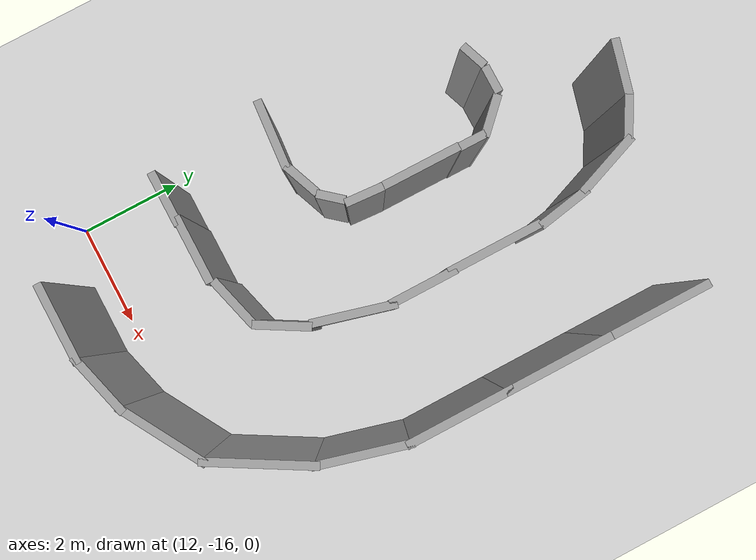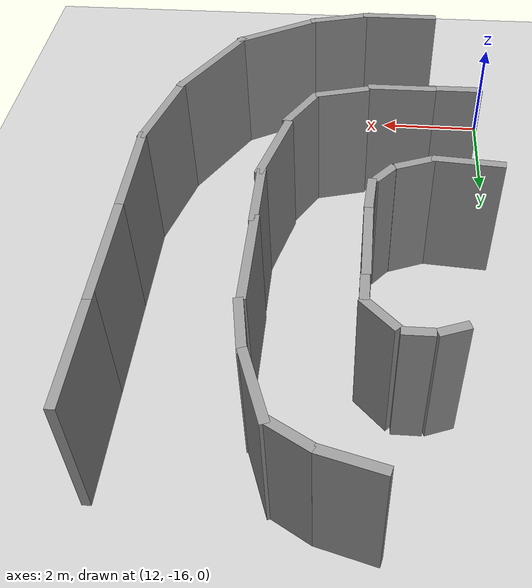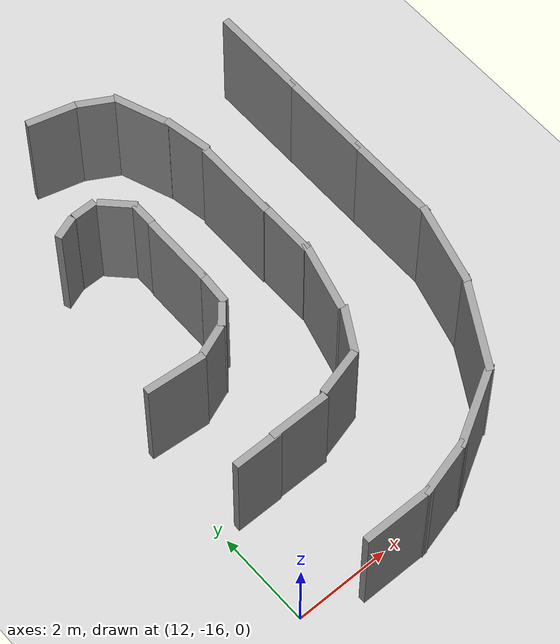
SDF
<sdf version="1.6">
 <world name="default">
  <model name="ground_plane">
   <static>1</static>
   <link name="link">
    <collision name="collision">
     <geometry><plane><normal>0 0 1</normal><size>100 100</size></plane></geometry>
     <surface><friction><ode><mu>100</mu><mu2>50</mu2></ode></friction></surface>
    </collision>
    <visual name="visual">
     <cast_shadows>0</cast_shadows>
     <geometry><plane><normal>0 0 1</normal><size>100 100</size></plane></geometry>
     <material>
      <script><uri>file://media/materials/scripts/gazebo.material</uri><name>Gazebo/Grey</name></script>
     </material>
    </visual>
   </link>
  </model>
  <model name="c-Snail_v3">
   <link name="Wall_29">
    <pose>10.2991 1.24294 0 0 -0 1.5708</pose>
    <visual name="Wall_29_Visual">
     <pose>0 0 1.25 0 -0 0</pose>
     <geometry><box><size>1.5 0.15 2.5</size></box></geometry>
     <material>
      <script><uri>file://media/materials/scripts/gazebo.material</uri><name>Gazebo/Grey</name></script>
      <ambient>1 1 1 1</ambient>
     </material>
     <meta><layer>0</layer></meta>
    </visual>
    <collision name="Wall_29_Collision">
     <pose>0 0 1.25 0 -0 0</pose>
     <geometry><box><size>1.5 0.15 2.5</size></box></geometry>
     <surface>
      <friction>
       <ode><mu>1</mu><mu2>1</mu2><fdir1>0 0 0</fdir1><slip1>0</slip1><slip2>0</slip2></ode>
       <torsional>
        <coefficient>1</coefficient>
        <patch_radius>0</patch_radius>
        <surface_radius>0</surface_radius>
        <use_patch_radius>1</use_patch_radius>
        <ode><slip>0</slip></ode>
       </torsional>
      </friction>
      <bounce><restitution_coefficient>0</restitution_coefficient><threshold>1e+06</threshold></bounce>
      <contact>
       <collide_without_contact>0</collide_without_contact>
       <collide_without_contact_bitmask>1</collide_without_contact_bitmask>
       <collide_bitmask>1</collide_bitmask>
       <ode>
        <soft_cfm>0</soft_cfm>
        <soft_erp>0.2</soft_erp>
        <kp>1e+13</kp>
        <kd>1</kd>
        <max_vel>0.01</max_vel>
        <min_depth>0</min_depth>
       </ode>
       <bullet>
        <split_impulse>1</split_impulse>
        <split_impulse_penetration_threshold>-0.01</split_impulse_penetration_threshold>
        <soft_cfm>0</soft_cfm>
        <soft_erp>0.2</soft_erp>
        <kp>1e+13</kp>
        <kd>1</kd>
       </bullet>
      </contact>
     </surface>
    </collision>
   </link>
   <link name="Wall_30">
    <pose>10.1568 2.4492 0 0 -0 1.8326</pose>
    <visual name="Wall_30_Visual">
     <pose>0 0 1.25 0 -0 0</pose>
     <geometry><box><size>1.25 0.15 2.5</size></box></geometry>
     <material>
      <script><uri>file://media/materials/scripts/gazebo.material</uri><name>Gazebo/Grey</name></script>
      <ambient>1 1 1 1</ambient>
     </material>
     <meta><layer>0</layer></meta>
    </visual>
    <collision name="Wall_30_Collision">
     <pose>0 0 1.25 0 -0 0</pose>
     <geometry><box><size>1.25 0.15 2.5</size></box></geometry>
     <surface>
      <friction>
       <ode><mu>1</mu><mu2>1</mu2><fdir1>0 0 0</fdir1><slip1>0</slip1><slip2>0</slip2></ode>
       <torsional>
        <coefficient>1</coefficient>
        <patch_radius>0</patch_radius>
        <surface_radius>0</surface_radius>
        <use_patch_radius>1</use_patch_radius>
        <ode><slip>0</slip></ode>
       </torsional>
      </friction>
      <bounce><restitution_coefficient>0</restitution_coefficient><threshold>1e+06</threshold></bounce>
      <contact>
       <collide_without_contact>0</collide_without_contact>
       <collide_without_contact_bitmask>1</collide_without_contact_bitmask>
       <collide_bitmask>1</collide_bitmask>
       <ode>
        <soft_cfm>0</soft_cfm>
        <soft_erp>0.2</soft_erp>
        <kp>1e+13</kp>
        <kd>1</kd>
        <max_vel>0.01</max_vel>
        <min_depth>0</min_depth>
       </ode>
       <bullet>
        <split_impulse>1</split_impulse>
        <split_impulse_penetration_threshold>-0.01</split_impulse_penetration_threshold>
        <soft_cfm>0</soft_cfm>
        <soft_erp>0.2</soft_erp>
        <kp>1e+13</kp>
        <kd>1</kd>
       </bullet>
      </contact>
     </surface>
    </collision>
   </link>
   <link name="Wall_31">
    <pose>9.61441 3.67328 0 0 -0 2.0944</pose>
    <visual name="Wall_31_Visual">
     <pose>0 0 1.25 0 -0 0</pose>
     <geometry><box><size>1.75 0.15 2.5</size></box></geometry>
     <material>
      <script><uri>file://media/materials/scripts/gazebo.material</uri><name>Gazebo/Grey</name></script>
      <ambient>1 1 1 1</ambient>
     </material>
     <meta><layer>0</layer></meta>
    </visual>
    <collision name="Wall_31_Collision">
     <pose>0 0 1.25 0 -0 0</pose>
     <geometry><box><size>1.75 0.15 2.5</size></box></geometry>
     <surface>
      <friction>
       <ode><mu>1</mu><mu2>1</mu2><fdir1>0 0 0</fdir1><slip1>0</slip1><slip2>0</slip2></ode>
       <torsional>
        <coefficient>1</coefficient>
        <patch_radius>0</patch_radius>
        <surface_radius>0</surface_radius>
        <use_patch_radius>1</use_patch_radius>
        <ode><slip>0</slip></ode>
       </torsional>
      </friction>
      <bounce><restitution_coefficient>0</restitution_coefficient><threshold>1e+06</threshold></bounce>
      <contact>
       <collide_without_contact>0</collide_without_contact>
       <collide_without_contact_bitmask>1</collide_without_contact_bitmask>
       <collide_bitmask>1</collide_bitmask>
       <ode>
        <soft_cfm>0</soft_cfm>
        <soft_erp>0.2</soft_erp>
        <kp>1e+13</kp>
        <kd>1</kd>
        <max_vel>0.01</max_vel>
        <min_depth>0</min_depth>
       </ode>
       <bullet>
        <split_impulse>1</split_impulse>
        <split_impulse_penetration_threshold>-0.01</split_impulse_penetration_threshold>
        <soft_cfm>0</soft_cfm>
        <soft_erp>0.2</soft_erp>
        <kp>1e+13</kp>
        <kd>1</kd>
       </bullet>
      </contact>
     </surface>
    </collision>
   </link>
   <link name="Wall_32">
    <pose>8.41334 4.8286 0 0 -0 2.61799</pose>
    <visual name="Wall_32_Visual">
     <pose>0 0 1.25 0 -0 0</pose>
     <geometry><box><size>2 0.15 2.5</size></box></geometry>
     <material>
      <script><uri>file://media/materials/scripts/gazebo.material</uri><name>Gazebo/Grey</name></script>
      <ambient>1 1 1 1</ambient>
     </material>
     <meta><layer>0</layer></meta>
    </visual>
    <collision name="Wall_32_Collision">
     <pose>0 0 1.25 0 -0 0</pose>
     <geometry><box><size>2 0.15 2.5</size></box></geometry>
     <surface>
      <friction>
       <ode><mu>1</mu><mu2>1</mu2><fdir1>0 0 0</fdir1><slip1>0</slip1><slip2>0</slip2></ode>
       <torsional>
        <coefficient>1</coefficient>
        <patch_radius>0</patch_radius>
        <surface_radius>0</surface_radius>
        <use_patch_radius>1</use_patch_radius>
        <ode><slip>0</slip></ode>
       </torsional>
      </friction>
      <bounce><restitution_coefficient>0</restitution_coefficient><threshold>1e+06</threshold></bounce>
      <contact>
       <collide_without_contact>0</collide_without_contact>
       <collide_without_contact_bitmask>1</collide_without_contact_bitmask>
       <collide_bitmask>1</collide_bitmask>
       <ode>
        <soft_cfm>0</soft_cfm>
        <soft_erp>0.2</soft_erp>
        <kp>1e+13</kp>
        <kd>1</kd>
        <max_vel>0.01</max_vel>
        <min_depth>0</min_depth>
       </ode>
       <bullet>
        <split_impulse>1</split_impulse>
        <split_impulse_penetration_threshold>-0.01</split_impulse_penetration_threshold>
        <soft_cfm>0</soft_cfm>
        <soft_erp>0.2</soft_erp>
        <kp>1e+13</kp>
        <kd>1</kd>
       </bullet>
      </contact>
     </surface>
    </collision>
   </link>
   <link name="Wall_33">
    <pose>6.83952 5.49815 0 0 -0 2.87979</pose>
    <visual name="Wall_33_Visual">
     <pose>0 0 1.25 0 -0 0</pose>
     <geometry><box><size>1.75 0.15 2.5</size></box></geometry>
     <material>
      <script><uri>file://media/materials/scripts/gazebo.material</uri><name>Gazebo/Grey</name></script>
      <ambient>1 1 1 1</ambient>
     </material>
     <meta><layer>0</layer></meta>
    </visual>
    <collision name="Wall_33_Collision">
     <pose>0 0 1.25 0 -0 0</pose>
     <geometry><box><size>1.75 0.15 2.5</size></box></geometry>
     <surface>
      <friction>
       <ode><mu>1</mu><mu2>1</mu2><fdir1>0 0 0</fdir1><slip1>0</slip1><slip2>0</slip2></ode>
       <torsional>
        <coefficient>1</coefficient>
        <patch_radius>0</patch_radius>
        <surface_radius>0</surface_radius>
        <use_patch_radius>1</use_patch_radius>
        <ode><slip>0</slip></ode>
       </torsional>
      </friction>
      <bounce><restitution_coefficient>0</restitution_coefficient><threshold>1e+06</threshold></bounce>
      <contact>
       <collide_without_contact>0</collide_without_contact>
       <collide_without_contact_bitmask>1</collide_without_contact_bitmask>
       <collide_bitmask>1</collide_bitmask>
       <ode>
        <soft_cfm>0</soft_cfm>
        <soft_erp>0.2</soft_erp>
        <kp>1e+13</kp>
        <kd>1</kd>
        <max_vel>0.01</max_vel>
        <min_depth>0</min_depth>
       </ode>
       <bullet>
        <split_impulse>1</split_impulse>
        <split_impulse_penetration_threshold>-0.01</split_impulse_penetration_threshold>
        <soft_cfm>0</soft_cfm>
        <soft_erp>0.2</soft_erp>
        <kp>1e+13</kp>
        <kd>1</kd>
       </bullet>
      </contact>
     </surface>
    </collision>
   </link>
   <link name="Wall_34">
    <pose>5.14178 5.70521 0 0 -0 3.14159</pose>
    <visual name="Wall_34_Visual">
     <pose>0 0 1.25 0 -0 0</pose>
     <geometry><box><size>2 0.15 2.5</size></box></geometry>
     <material>
      <script><uri>file://media/materials/scripts/gazebo.material</uri><name>Gazebo/Grey</name></script>
      <ambient>1 1 1 1</ambient>
     </material>
     <meta><layer>0</layer></meta>
    </visual>
    <collision name="Wall_34_Collision">
     <pose>0 0 1.25 0 -0 0</pose>
     <geometry><box><size>2 0.15 2.5</size></box></geometry>
     <surface>
      <friction>
       <ode><mu>1</mu><mu2>1</mu2><fdir1>0 0 0</fdir1><slip1>0</slip1><slip2>0</slip2></ode>
       <torsional>
        <coefficient>1</coefficient>
        <patch_radius>0</patch_radius>
        <surface_radius>0</surface_radius>
        <use_patch_radius>1</use_patch_radius>
        <ode><slip>0</slip></ode>
       </torsional>
      </friction>
      <bounce><restitution_coefficient>0</restitution_coefficient><threshold>1e+06</threshold></bounce>
      <contact>
       <collide_without_contact>0</collide_without_contact>
       <collide_without_contact_bitmask>1</collide_without_contact_bitmask>
       <collide_bitmask>1</collide_bitmask>
       <ode>
        <soft_cfm>0</soft_cfm>
        <soft_erp>0.2</soft_erp>
        <kp>1e+13</kp>
        <kd>1</kd>
        <max_vel>0.01</max_vel>
        <min_depth>0</min_depth>
       </ode>
       <bullet>
        <split_impulse>1</split_impulse>
        <split_impulse_penetration_threshold>-0.01</split_impulse_penetration_threshold>
        <soft_cfm>0</soft_cfm>
        <soft_erp>0.2</soft_erp>
        <kp>1e+13</kp>
        <kd>1</kd>
       </bullet>
      </contact>
     </surface>
    </collision>
   </link>
   <link name="Wall_35">
    <pose>3.29178 5.70521 0 0 -0 3.14159</pose>
    <visual name="Wall_35_Visual">
     <pose>0 0 1.25 0 -0 0</pose>
     <geometry><box><size>2 0.15 2.5</size></box></geometry>
     <material>
      <script><uri>file://media/materials/scripts/gazebo.material</uri><name>Gazebo/Grey</name></script>
      <ambient>1 1 1 1</ambient>
     </material>
     <meta><layer>0</layer></meta>
    </visual>
    <collision name="Wall_35_Collision">
     <pose>0 0 1.25 0 -0 0</pose>
     <geometry><box><size>2 0.15 2.5</size></box></geometry>
     <surface>
      <friction>
       <ode><mu>1</mu><mu2>1</mu2><fdir1>0 0 0</fdir1><slip1>0</slip1><slip2>0</slip2></ode>
       <torsional>
        <coefficient>1</coefficient>
        <patch_radius>0</patch_radius>
        <surface_radius>0</surface_radius>
        <use_patch_radius>1</use_patch_radius>
        <ode><slip>0</slip></ode>
       </torsional>
      </friction>
      <bounce><restitution_coefficient>0</restitution_coefficient><threshold>1e+06</threshold></bounce>
      <contact>
       <collide_without_contact>0</collide_without_contact>
       <collide_without_contact_bitmask>1</collide_without_contact_bitmask>
       <collide_bitmask>1</collide_bitmask>
       <ode>
        <soft_cfm>0</soft_cfm>
        <soft_erp>0.2</soft_erp>
        <kp>1e+13</kp>
        <kd>1</kd>
        <max_vel>0.01</max_vel>
        <min_depth>0</min_depth>
       </ode>
       <bullet>
        <split_impulse>1</split_impulse>
        <split_impulse_penetration_threshold>-0.01</split_impulse_penetration_threshold>
        <soft_cfm>0</soft_cfm>
        <soft_erp>0.2</soft_erp>
        <kp>1e+13</kp>
        <kd>1</kd>
       </bullet>
      </contact>
     </surface>
    </collision>
   </link>
   <link name="Wall_36">
    <pose>1.44178 5.70521 0 0 -0 3.14159</pose>
    <visual name="Wall_36_Visual">
     <pose>0 0 1.25 0 -0 0</pose>
     <geometry><box><size>2 0.15 2.5</size></box></geometry>
     <material>
      <script><uri>file://media/materials/scripts/gazebo.material</uri><name>Gazebo/Grey</name></script>
      <ambient>1 1 1 1</ambient>
     </material>
     <meta><layer>0</layer></meta>
    </visual>
    <collision name="Wall_36_Collision">
     <pose>0 0 1.25 0 -0 0</pose>
     <geometry><box><size>2 0.15 2.5</size></box></geometry>
     <surface>
      <friction>
       <ode><mu>1</mu><mu2>1</mu2><fdir1>0 0 0</fdir1><slip1>0</slip1><slip2>0</slip2></ode>
       <torsional>
        <coefficient>1</coefficient>
        <patch_radius>0</patch_radius>
        <surface_radius>0</surface_radius>
        <use_patch_radius>1</use_patch_radius>
        <ode><slip>0</slip></ode>
       </torsional>
      </friction>
      <bounce><restitution_coefficient>0</restitution_coefficient><threshold>1e+06</threshold></bounce>
      <contact>
       <collide_without_contact>0</collide_without_contact>
       <collide_without_contact_bitmask>1</collide_without_contact_bitmask>
       <collide_bitmask>1</collide_bitmask>
       <ode>
        <soft_cfm>0</soft_cfm>
        <soft_erp>0.2</soft_erp>
        <kp>1e+13</kp>
        <kd>1</kd>
        <max_vel>0.01</max_vel>
        <min_depth>0</min_depth>
       </ode>
       <bullet>
        <split_impulse>1</split_impulse>
        <split_impulse_penetration_threshold>-0.01</split_impulse_penetration_threshold>
        <soft_cfm>0</soft_cfm>
        <soft_erp>0.2</soft_erp>
        <kp>1e+13</kp>
        <kd>1</kd>
       </bullet>
      </contact>
     </surface>
    </collision>
   </link>
   <link name="Wall_55">
    <pose>7.78252 0.225208 0 0 -0 1.5708</pose>
    <visual name="Wall_55_Visual">
     <pose>0 0 1.25 0 -0 0</pose>
     <geometry><box><size>1 0.15 2.5</size></box></geometry>
     <material>
      <script><uri>file://media/materials/scripts/gazebo.material</uri><name>Gazebo/Grey</name></script>
      <ambient>1 1 1 1</ambient>
     </material>
     <meta><layer>0</layer></meta>
    </visual>
    <collision name="Wall_55_Collision">
     <pose>0 0 1.25 0 -0 0</pose>
     <geometry><box><size>1 0.15 2.5</size></box></geometry>
     <surface>
      <friction>
       <ode><mu>1</mu><mu2>1</mu2><fdir1>0 0 0</fdir1><slip1>0</slip1><slip2>0</slip2></ode>
       <torsional>
        <coefficient>1</coefficient>
        <patch_radius>0</patch_radius>
        <surface_radius>0</surface_radius>
        <use_patch_radius>1</use_patch_radius>
        <ode><slip>0</slip></ode>
       </torsional>
      </friction>
      <bounce><restitution_coefficient>0</restitution_coefficient><threshold>1e+06</threshold></bounce>
      <contact>
       <collide_without_contact>0</collide_without_contact>
       <collide_without_contact_bitmask>1</collide_without_contact_bitmask>
       <collide_bitmask>1</collide_bitmask>
       <ode>
        <soft_cfm>0</soft_cfm>
        <soft_erp>0.2</soft_erp>
        <kp>1e+13</kp>
        <kd>1</kd>
        <max_vel>0.01</max_vel>
        <min_depth>0</min_depth>
       </ode>
       <bullet>
        <split_impulse>1</split_impulse>
        <split_impulse_penetration_threshold>-0.01</split_impulse_penetration_threshold>
        <soft_cfm>0</soft_cfm>
        <soft_erp>0.2</soft_erp>
        <kp>1e+13</kp>
        <kd>1</kd>
       </bullet>
      </contact>
     </surface>
    </collision>
   </link>
   <link name="Wall_56">
    <pose>7.75985 1.20021 0 0 -0 1.5708</pose>
    <visual name="Wall_56_Visual">
     <pose>0 0 1.25 0 -0 0</pose>
     <geometry><box><size>1.25 0.15 2.5</size></box></geometry>
     <material>
      <script><uri>file://media/materials/scripts/gazebo.material</uri><name>Gazebo/Grey</name></script>
      <ambient>1 1 1 1</ambient>
     </material>
     <meta><layer>0</layer></meta>
    </visual>
    <collision name="Wall_56_Collision">
     <pose>0 0 1.25 0 -0 0</pose>
     <geometry><box><size>1.25 0.15 2.5</size></box></geometry>
     <surface>
      <friction>
       <ode><mu>1</mu><mu2>1</mu2><fdir1>0 0 0</fdir1><slip1>0</slip1><slip2>0</slip2></ode>
       <torsional>
        <coefficient>1</coefficient>
        <patch_radius>0</patch_radius>
        <surface_radius>0</surface_radius>
        <use_patch_radius>1</use_patch_radius>
        <ode><slip>0</slip></ode>
       </torsional>
      </friction>
      <bounce><restitution_coefficient>0</restitution_coefficient><threshold>1e+06</threshold></bounce>
      <contact>
       <collide_without_contact>0</collide_without_contact>
       <collide_without_contact_bitmask>1</collide_without_contact_bitmask>
       <collide_bitmask>1</collide_bitmask>
       <ode>
        <soft_cfm>0</soft_cfm>
        <soft_erp>0.2</soft_erp>
        <kp>1e+13</kp>
        <kd>1</kd>
        <max_vel>0.01</max_vel>
        <min_depth>0</min_depth>
       </ode>
       <bullet>
        <split_impulse>1</split_impulse>
        <split_impulse_penetration_threshold>-0.01</split_impulse_penetration_threshold>
        <soft_cfm>0</soft_cfm>
        <soft_erp>0.2</soft_erp>
        <kp>1e+13</kp>
        <kd>1</kd>
       </bullet>
      </contact>
     </surface>
    </collision>
   </link>
   <link name="Wall_57">
    <pose>7.56918 2.29911 0 0 -0 1.8326</pose>
    <visual name="Wall_57_Visual">
     <pose>0 0 1.25 0 -0 0</pose>
     <geometry><box><size>1 0.15 2.5</size></box></geometry>
     <material>
      <script><uri>file://media/materials/scripts/gazebo.material</uri><name>Gazebo/Grey</name></script>
      <ambient>1 1 1 1</ambient>
     </material>
     <meta><layer>0</layer></meta>
    </visual>
    <collision name="Wall_57_Collision">
     <pose>0 0 1.25 0 -0 0</pose>
     <geometry><box><size>1 0.15 2.5</size></box></geometry>
     <surface>
      <friction>
       <ode><mu>1</mu><mu2>1</mu2><fdir1>0 0 0</fdir1><slip1>0</slip1><slip2>0</slip2></ode>
       <torsional>
        <coefficient>1</coefficient>
        <patch_radius>0</patch_radius>
        <surface_radius>0</surface_radius>
        <use_patch_radius>1</use_patch_radius>
        <ode><slip>0</slip></ode>
       </torsional>
      </friction>
      <bounce><restitution_coefficient>0</restitution_coefficient><threshold>1e+06</threshold></bounce>
      <contact>
       <collide_without_contact>0</collide_without_contact>
       <collide_without_contact_bitmask>1</collide_without_contact_bitmask>
       <collide_bitmask>1</collide_bitmask>
       <ode>
        <soft_cfm>0</soft_cfm>
        <soft_erp>0.2</soft_erp>
        <kp>1e+13</kp>
        <kd>1</kd>
        <max_vel>0.01</max_vel>
        <min_depth>0</min_depth>
       </ode>
       <bullet>
        <split_impulse>1</split_impulse>
        <split_impulse_penetration_threshold>-0.01</split_impulse_penetration_threshold>
        <soft_cfm>0</soft_cfm>
        <soft_erp>0.2</soft_erp>
        <kp>1e+13</kp>
        <kd>1</kd>
       </bullet>
      </contact>
     </surface>
    </collision>
   </link>
   <link name="Wall_58">
    <pose>7.036 3.00803 0 0 -0 2.61799</pose>
    <visual name="Wall_58_Visual">
     <pose>0 0 1.25 0 -0 0</pose>
     <geometry><box><size>1 0.15 2.5</size></box></geometry>
     <material>
      <script><uri>file://media/materials/scripts/gazebo.material</uri><name>Gazebo/Grey</name></script>
      <ambient>1 1 1 1</ambient>
     </material>
     <meta><layer>0</layer></meta>
    </visual>
    <collision name="Wall_58_Collision">
     <pose>0 0 1.25 0 -0 0</pose>
     <geometry><box><size>1 0.15 2.5</size></box></geometry>
     <surface>
      <friction>
       <ode><mu>1</mu><mu2>1</mu2><fdir1>0 0 0</fdir1><slip1>0</slip1><slip2>0</slip2></ode>
       <torsional>
        <coefficient>1</coefficient>
        <patch_radius>0</patch_radius>
        <surface_radius>0</surface_radius>
        <use_patch_radius>1</use_patch_radius>
        <ode><slip>0</slip></ode>
       </torsional>
      </friction>
      <bounce><restitution_coefficient>0</restitution_coefficient><threshold>1e+06</threshold></bounce>
      <contact>
       <collide_without_contact>0</collide_without_contact>
       <collide_without_contact_bitmask>1</collide_without_contact_bitmask>
       <collide_bitmask>1</collide_bitmask>
       <ode>
        <soft_cfm>0</soft_cfm>
        <soft_erp>0.2</soft_erp>
        <kp>1e+13</kp>
        <kd>1</kd>
        <max_vel>0.01</max_vel>
        <min_depth>0</min_depth>
       </ode>
       <bullet>
        <split_impulse>1</split_impulse>
        <split_impulse_penetration_threshold>-0.01</split_impulse_penetration_threshold>
        <soft_cfm>0</soft_cfm>
        <soft_erp>0.2</soft_erp>
        <kp>1e+13</kp>
        <kd>1</kd>
       </bullet>
      </contact>
     </surface>
    </collision>
   </link>
   <link name="Wall_59">
    <pose>5.90215 3.39004 0 0 -0 2.87979</pose>
    <visual name="Wall_59_Visual">
     <pose>0 0 1.25 0 -0 0</pose>
     <geometry><box><size>1.5 0.15 2.5</size></box></geometry>
     <material>
      <script><uri>file://media/materials/scripts/gazebo.material</uri><name>Gazebo/Grey</name></script>
      <ambient>1 1 1 1</ambient>
     </material>
     <meta><layer>0</layer></meta>
    </visual>
    <collision name="Wall_59_Collision">
     <pose>0 0 1.25 0 -0 0</pose>
     <geometry><box><size>1.5 0.15 2.5</size></box></geometry>
     <surface>
      <friction>
       <ode><mu>1</mu><mu2>1</mu2><fdir1>0 0 0</fdir1><slip1>0</slip1><slip2>0</slip2></ode>
       <torsional>
        <coefficient>1</coefficient>
        <patch_radius>0</patch_radius>
        <surface_radius>0</surface_radius>
        <use_patch_radius>1</use_patch_radius>
        <ode><slip>0</slip></ode>
       </torsional>
      </friction>
      <bounce><restitution_coefficient>0</restitution_coefficient><threshold>1e+06</threshold></bounce>
      <contact>
       <collide_without_contact>0</collide_without_contact>
       <collide_without_contact_bitmask>1</collide_without_contact_bitmask>
       <collide_bitmask>1</collide_bitmask>
       <ode>
        <soft_cfm>0</soft_cfm>
        <soft_erp>0.2</soft_erp>
        <kp>1e+13</kp>
        <kd>1</kd>
        <max_vel>0.01</max_vel>
        <min_depth>0</min_depth>
       </ode>
       <bullet>
        <split_impulse>1</split_impulse>
        <split_impulse_penetration_threshold>-0.01</split_impulse_penetration_threshold>
        <soft_cfm>0</soft_cfm>
        <soft_erp>0.2</soft_erp>
        <kp>1e+13</kp>
        <kd>1</kd>
       </bullet>
      </contact>
     </surface>
    </collision>
   </link>
   <link name="Wall_60">
    <pose>4.67122 3.53706 0 0 -0 3.14159</pose>
    <visual name="Wall_60_Visual">
     <pose>0 0 1.25 0 -0 0</pose>
     <geometry><box><size>1.25 0.15 2.5</size></box></geometry>
     <material>
      <script><uri>file://media/materials/scripts/gazebo.material</uri><name>Gazebo/Grey</name></script>
      <ambient>1 1 1 1</ambient>
     </material>
     <meta><layer>0</layer></meta>
    </visual>
    <collision name="Wall_60_Collision">
     <pose>0 0 1.25 0 -0 0</pose>
     <geometry><box><size>1.25 0.15 2.5</size></box></geometry>
     <surface>
      <friction>
       <ode><mu>1</mu><mu2>1</mu2><fdir1>0 0 0</fdir1><slip1>0</slip1><slip2>0</slip2></ode>
       <torsional>
        <coefficient>1</coefficient>
        <patch_radius>0</patch_radius>
        <surface_radius>0</surface_radius>
        <use_patch_radius>1</use_patch_radius>
        <ode><slip>0</slip></ode>
       </torsional>
      </friction>
      <bounce><restitution_coefficient>0</restitution_coefficient><threshold>1e+06</threshold></bounce>
      <contact>
       <collide_without_contact>0</collide_without_contact>
       <collide_without_contact_bitmask>1</collide_without_contact_bitmask>
       <collide_bitmask>1</collide_bitmask>
       <ode>
        <soft_cfm>0</soft_cfm>
        <soft_erp>0.2</soft_erp>
        <kp>1e+13</kp>
        <kd>1</kd>
        <max_vel>0.01</max_vel>
        <min_depth>0</min_depth>
       </ode>
       <bullet>
        <split_impulse>1</split_impulse>
        <split_impulse_penetration_threshold>-0.01</split_impulse_penetration_threshold>
        <soft_cfm>0</soft_cfm>
        <soft_erp>0.2</soft_erp>
        <kp>1e+13</kp>
        <kd>1</kd>
       </bullet>
      </contact>
     </surface>
    </collision>
   </link>
   <link name="Wall_61">
    <pose>3.31404 3.52063 0 0 -0 3.14159</pose>
    <visual name="Wall_61_Visual">
     <pose>0 0 1.25 0 -0 0</pose>
     <geometry><box><size>1.75 0.15 2.5</size></box></geometry>
     <material>
      <script><uri>file://media/materials/scripts/gazebo.material</uri><name>Gazebo/Grey</name></script>
      <ambient>1 1 1 1</ambient>
     </material>
     <meta><layer>0</layer></meta>
    </visual>
    <collision name="Wall_61_Collision">
     <pose>0 0 1.25 0 -0 0</pose>
     <geometry><box><size>1.75 0.15 2.5</size></box></geometry>
     <surface>
      <friction>
       <ode><mu>1</mu><mu2>1</mu2><fdir1>0 0 0</fdir1><slip1>0</slip1><slip2>0</slip2></ode>
       <torsional>
        <coefficient>1</coefficient>
        <patch_radius>0</patch_radius>
        <surface_radius>0</surface_radius>
        <use_patch_radius>1</use_patch_radius>
        <ode><slip>0</slip></ode>
       </torsional>
      </friction>
      <bounce><restitution_coefficient>0</restitution_coefficient><threshold>1e+06</threshold></bounce>
      <contact>
       <collide_without_contact>0</collide_without_contact>
       <collide_without_contact_bitmask>1</collide_without_contact_bitmask>
       <collide_bitmask>1</collide_bitmask>
       <ode>
        <soft_cfm>0</soft_cfm>
        <soft_erp>0.2</soft_erp>
        <kp>1e+13</kp>
        <kd>1</kd>
        <max_vel>0.01</max_vel>
        <min_depth>0</min_depth>
       </ode>
       <bullet>
        <split_impulse>1</split_impulse>
        <split_impulse_penetration_threshold>-0.01</split_impulse_penetration_threshold>
        <soft_cfm>0</soft_cfm>
        <soft_erp>0.2</soft_erp>
        <kp>1e+13</kp>
        <kd>1</kd>
       </bullet>
      </contact>
     </surface>
    </collision>
   </link>
   <link name="Wall_62">
    <pose>1.97453 3.47402 0 0 0 -2.96184</pose>
    <visual name="Wall_62_Visual">
     <pose>0 0 1.25 0 -0 0</pose>
     <geometry><box><size>1 0.15 2.5</size></box></geometry>
     <material>
      <script><uri>file://media/materials/scripts/gazebo.material</uri><name>Gazebo/Grey</name></script>
      <ambient>1 1 1 1</ambient>
     </material>
     <meta><layer>0</layer></meta>
    </visual>
    <collision name="Wall_62_Collision">
     <pose>0 0 1.25 0 -0 0</pose>
     <geometry><box><size>1 0.15 2.5</size></box></geometry>
     <surface>
      <friction>
       <ode><mu>1</mu><mu2>1</mu2><fdir1>0 0 0</fdir1><slip1>0</slip1><slip2>0</slip2></ode>
       <torsional>
        <coefficient>1</coefficient>
        <patch_radius>0</patch_radius>
        <surface_radius>0</surface_radius>
        <use_patch_radius>1</use_patch_radius>
        <ode><slip>0</slip></ode>
       </torsional>
      </friction>
      <bounce><restitution_coefficient>0</restitution_coefficient><threshold>1e+06</threshold></bounce>
      <contact>
       <collide_without_contact>0</collide_without_contact>
       <collide_without_contact_bitmask>1</collide_without_contact_bitmask>
       <collide_bitmask>1</collide_bitmask>
       <ode>
        <soft_cfm>0</soft_cfm>
        <soft_erp>0.2</soft_erp>
        <kp>1e+13</kp>
        <kd>1</kd>
        <max_vel>0.01</max_vel>
        <min_depth>0</min_depth>
       </ode>
       <bullet>
        <split_impulse>1</split_impulse>
        <split_impulse_penetration_threshold>-0.01</split_impulse_penetration_threshold>
        <soft_cfm>0</soft_cfm>
        <soft_erp>0.2</soft_erp>
        <kp>1e+13</kp>
        <kd>1</kd>
       </bullet>
      </contact>
     </surface>
    </collision>
   </link>
   <link name="Wall_63">
    <pose>0.99614 3.17664 0 0 0 -2.78252</pose>
    <visual name="Wall_63_Visual">
     <pose>0 0 1.25 0 -0 0</pose>
     <geometry><box><size>1.25 0.15 2.5</size></box></geometry>
     <material>
      <script><uri>file://media/materials/scripts/gazebo.material</uri><name>Gazebo/Grey</name></script>
      <ambient>1 1 1 1</ambient>
     </material>
     <meta><layer>0</layer></meta>
    </visual>
    <collision name="Wall_63_Collision">
     <pose>0 0 1.25 0 -0 0</pose>
     <geometry><box><size>1.25 0.15 2.5</size></box></geometry>
     <surface>
      <friction>
       <ode><mu>1</mu><mu2>1</mu2><fdir1>0 0 0</fdir1><slip1>0</slip1><slip2>0</slip2></ode>
       <torsional>
        <coefficient>1</coefficient>
        <patch_radius>0</patch_radius>
        <surface_radius>0</surface_radius>
        <use_patch_radius>1</use_patch_radius>
        <ode><slip>0</slip></ode>
       </torsional>
      </friction>
      <bounce><restitution_coefficient>0</restitution_coefficient><threshold>1e+06</threshold></bounce>
      <contact>
       <collide_without_contact>0</collide_without_contact>
       <collide_without_contact_bitmask>1</collide_without_contact_bitmask>
       <collide_bitmask>1</collide_bitmask>
       <ode>
        <soft_cfm>0</soft_cfm>
        <soft_erp>0.2</soft_erp>
        <kp>1e+13</kp>
        <kd>1</kd>
        <max_vel>0.01</max_vel>
        <min_depth>0</min_depth>
       </ode>
       <bullet>
        <split_impulse>1</split_impulse>
        <split_impulse_penetration_threshold>-0.01</split_impulse_penetration_threshold>
        <soft_cfm>0</soft_cfm>
        <soft_erp>0.2</soft_erp>
        <kp>1e+13</kp>
        <kd>1</kd>
       </bullet>
      </contact>
     </surface>
    </collision>
   </link>
   <link name="Wall_64">
    <pose>0.28704 2.63 0 0 0 -2.0944</pose>
    <visual name="Wall_64_Visual">
     <pose>0 0 1.25 0 -0 0</pose>
     <geometry><box><size>0.75 0.15 2.5</size></box></geometry>
     <material>
      <script><uri>file://media/materials/scripts/gazebo.material</uri><name>Gazebo/Grey</name></script>
      <ambient>1 1 1 1</ambient>
     </material>
     <meta><layer>0</layer></meta>
    </visual>
    <collision name="Wall_64_Collision">
     <pose>0 0 1.25 0 -0 0</pose>
     <geometry><box><size>0.75 0.15 2.5</size></box></geometry>
     <surface>
      <friction>
       <ode><mu>1</mu><mu2>1</mu2><fdir1>0 0 0</fdir1><slip1>0</slip1><slip2>0</slip2></ode>
       <torsional>
        <coefficient>1</coefficient>
        <patch_radius>0</patch_radius>
        <surface_radius>0</surface_radius>
        <use_patch_radius>1</use_patch_radius>
        <ode><slip>0</slip></ode>
       </torsional>
      </friction>
      <bounce><restitution_coefficient>0</restitution_coefficient><threshold>1e+06</threshold></bounce>
      <contact>
       <collide_without_contact>0</collide_without_contact>
       <collide_without_contact_bitmask>1</collide_without_contact_bitmask>
       <collide_bitmask>1</collide_bitmask>
       <ode>
        <soft_cfm>0</soft_cfm>
        <soft_erp>0.2</soft_erp>
        <kp>1e+13</kp>
        <kd>1</kd>
        <max_vel>0.01</max_vel>
        <min_depth>0</min_depth>
       </ode>
       <bullet>
        <split_impulse>1</split_impulse>
        <split_impulse_penetration_threshold>-0.01</split_impulse_penetration_threshold>
        <soft_cfm>0</soft_cfm>
        <soft_erp>0.2</soft_erp>
        <kp>1e+13</kp>
        <kd>1</kd>
       </bullet>
      </contact>
     </surface>
    </collision>
   </link>
   <link name="Wall_65">
    <pose>-0.020213 1.84319 0 0 0 -1.8326</pose>
    <visual name="Wall_65_Visual">
     <pose>0 0 1.25 0 -0 0</pose>
     <geometry><box><size>1 0.15 2.5</size></box></geometry>
     <material>
      <script><uri>file://media/materials/scripts/gazebo.material</uri><name>Gazebo/Grey</name></script>
      <ambient>1 1 1 1</ambient>
     </material>
     <meta><layer>0</layer></meta>
    </visual>
    <collision name="Wall_65_Collision">
     <pose>0 0 1.25 0 -0 0</pose>
     <geometry><box><size>1 0.15 2.5</size></box></geometry>
     <surface>
      <friction>
       <ode><mu>1</mu><mu2>1</mu2><fdir1>0 0 0</fdir1><slip1>0</slip1><slip2>0</slip2></ode>
       <torsional>
        <coefficient>1</coefficient>
        <patch_radius>0</patch_radius>
        <surface_radius>0</surface_radius>
        <use_patch_radius>1</use_patch_radius>
        <ode><slip>0</slip></ode>
       </torsional>
      </friction>
      <bounce><restitution_coefficient>0</restitution_coefficient><threshold>1e+06</threshold></bounce>
      <contact>
       <collide_without_contact>0</collide_without_contact>
       <collide_without_contact_bitmask>1</collide_without_contact_bitmask>
       <collide_bitmask>1</collide_bitmask>
       <ode>
        <soft_cfm>0</soft_cfm>
        <soft_erp>0.2</soft_erp>
        <kp>1e+13</kp>
        <kd>1</kd>
        <max_vel>0.01</max_vel>
        <min_depth>0</min_depth>
       </ode>
       <bullet>
        <split_impulse>1</split_impulse>
        <split_impulse_penetration_threshold>-0.01</split_impulse_penetration_threshold>
        <soft_cfm>0</soft_cfm>
        <soft_erp>0.2</soft_erp>
        <kp>1e+13</kp>
        <kd>1</kd>
       </bullet>
      </contact>
     </surface>
    </collision>
   </link>
   <link name="Wall_71_clone">
    <pose>3.78048 1.74575 0 0 -0 3.13791</pose>
    <visual name="Wall_71_Visual">
     <pose>0 0 1.25 0 -0 0</pose>
     <geometry><box><size>1.5 0.15 2.5</size></box></geometry>
     <material>
      <script><uri>file://media/materials/scripts/gazebo.material</uri><name>Gazebo/Grey</name></script>
      <ambient>1 1 1 1</ambient>
      <shader type="pixel"/>
     </material>
     <meta><layer>0</layer></meta>
    </visual>
    <collision name="Wall_71_Collision">
     <pose>0 0 1.25 0 -0 0</pose>
     <geometry><box><size>1.5 0.15 2.5</size></box></geometry>
     <surface>
      <friction>
       <ode><mu>1</mu><mu2>1</mu2><fdir1>0 0 0</fdir1><slip1>0</slip1><slip2>0</slip2></ode>
       <torsional>
        <coefficient>1</coefficient>
        <patch_radius>0</patch_radius>
        <surface_radius>0</surface_radius>
        <use_patch_radius>1</use_patch_radius>
        <ode><slip>0</slip></ode>
       </torsional>
      </friction>
      <bounce><restitution_coefficient>0</restitution_coefficient><threshold>1e+06</threshold></bounce>
      <contact>
       <collide_without_contact>0</collide_without_contact>
       <collide_without_contact_bitmask>1</collide_without_contact_bitmask>
       <collide_bitmask>1</collide_bitmask>
       <ode>
        <soft_cfm>0</soft_cfm>
        <soft_erp>0.2</soft_erp>
        <kp>1e+13</kp>
        <kd>1</kd>
        <max_vel>0.01</max_vel>
        <min_depth>0</min_depth>
       </ode>
       <bullet>
        <split_impulse>1</split_impulse>
        <split_impulse_penetration_threshold>-0.01</split_impulse_penetration_threshold>
        <soft_cfm>0</soft_cfm>
        <soft_erp>0.2</soft_erp>
        <kp>1e+13</kp>
        <kd>1</kd>
       </bullet>
      </contact>
     </surface>
    </collision>
   </link>
   <link name="Wall_72_clone">
    <pose>5.70761 0.097339 0 0 0 -1.65202</pose>
    <visual name="Wall_72_Visual">
     <pose>0 0 1.25 0 -0 0</pose>
     <geometry><box><size>1.25 0.15 2.5</size></box></geometry>
     <material>
      <script><uri>file://media/materials/scripts/gazebo.material</uri><name>Gazebo/Grey</name></script>
      <ambient>1 1 1 1</ambient>
      <shader type="pixel"/>
     </material>
     <meta><layer>0</layer></meta>
    </visual>
    <collision name="Wall_72_Collision">
     <pose>0 0 1.25 0 -0 0</pose>
     <geometry><box><size>1.25 0.15 2.5</size></box></geometry>
     <surface>
      <friction>
       <ode><mu>1</mu><mu2>1</mu2><fdir1>0 0 0</fdir1><slip1>0</slip1><slip2>0</slip2></ode>
       <torsional>
        <coefficient>1</coefficient>
        <patch_radius>0</patch_radius>
        <surface_radius>0</surface_radius>
        <use_patch_radius>1</use_patch_radius>
        <ode><slip>0</slip></ode>
       </torsional>
      </friction>
      <bounce><restitution_coefficient>0</restitution_coefficient><threshold>1e+06</threshold></bounce>
      <contact>
       <collide_without_contact>0</collide_without_contact>
       <collide_without_contact_bitmask>1</collide_without_contact_bitmask>
       <collide_bitmask>1</collide_bitmask>
       <ode>
        <soft_cfm>0</soft_cfm>
        <soft_erp>0.2</soft_erp>
        <kp>1e+13</kp>
        <kd>1</kd>
        <max_vel>0.01</max_vel>
        <min_depth>0</min_depth>
       </ode>
       <bullet>
        <split_impulse>1</split_impulse>
        <split_impulse_penetration_threshold>-0.01</split_impulse_penetration_threshold>
        <soft_cfm>0</soft_cfm>
        <soft_erp>0.2</soft_erp>
        <kp>1e+13</kp>
        <kd>1</kd>
       </bullet>
      </contact>
     </surface>
    </collision>
   </link>
   <link name="Wall_73_clone_clone">
    <pose>5.62294 1.00373 0 0 -0 1.94012</pose>
    <visual name="Wall_73_Visual">
     <pose>0 0 1.25 0 -0 0</pose>
     <geometry><box><size>0.701928 0.15 2.5</size></box></geometry>
     <material>
      <script><uri>file://media/materials/scripts/gazebo.material</uri><name>Gazebo/Grey</name></script>
      <ambient>1 1 1 1</ambient>
      <shader type="pixel"/>
     </material>
     <meta><layer>0</layer></meta>
    </visual>
    <collision name="Wall_73_Collision">
     <pose>0 0 1.25 0 -0 0</pose>
     <geometry><box><size>0.701928 0.15 2.5</size></box></geometry>
     <surface>
      <friction>
       <ode><mu>1</mu><mu2>1</mu2><fdir1>0 0 0</fdir1><slip1>0</slip1><slip2>0</slip2></ode>
       <torsional>
        <coefficient>1</coefficient>
        <patch_radius>0</patch_radius>
        <surface_radius>0</surface_radius>
        <use_patch_radius>1</use_patch_radius>
        <ode><slip>0</slip></ode>
       </torsional>
      </friction>
      <bounce><restitution_coefficient>0</restitution_coefficient><threshold>1e+06</threshold></bounce>
      <contact>
       <collide_without_contact>0</collide_without_contact>
       <collide_without_contact_bitmask>1</collide_without_contact_bitmask>
       <collide_bitmask>1</collide_bitmask>
       <ode>
        <soft_cfm>0</soft_cfm>
        <soft_erp>0.2</soft_erp>
        <kp>1e+13</kp>
        <kd>1</kd>
        <max_vel>0.01</max_vel>
        <min_depth>0</min_depth>
       </ode>
       <bullet>
        <split_impulse>1</split_impulse>
        <split_impulse_penetration_threshold>-0.01</split_impulse_penetration_threshold>
        <soft_cfm>0</soft_cfm>
        <soft_erp>0.2</soft_erp>
        <kp>1e+13</kp>
        <kd>1</kd>
       </bullet>
      </contact>
     </surface>
    </collision>
   </link>
   <link name="Wall_73_clone_clone_clone">
    <pose>4.81951 1.72477 0 0 0 -0.06667</pose>
    <visual name="Wall_73_Visual">
     <pose>0 0 1.25 0 -0 0</pose>
     <geometry><box><size>0.701928 0.15 2.5</size></box></geometry>
     <material>
      <script><uri>file://media/materials/scripts/gazebo.material</uri><name>Gazebo/Grey</name></script>
      <ambient>1 1 1 1</ambient>
      <shader type="pixel"/>
     </material>
     <meta><layer>0</layer></meta>
    </visual>
    <collision name="Wall_73_Collision">
     <pose>0 0 1.25 0 -0 0</pose>
     <geometry><box><size>0.701928 0.15 2.5</size></box></geometry>
     <surface>
      <friction>
       <ode><mu>1</mu><mu2>1</mu2><fdir1>0 0 0</fdir1><slip1>0</slip1><slip2>0</slip2></ode>
       <torsional>
        <coefficient>1</coefficient>
        <patch_radius>0</patch_radius>
        <surface_radius>0</surface_radius>
        <use_patch_radius>1</use_patch_radius>
        <ode><slip>0</slip></ode>
       </torsional>
      </friction>
      <bounce><restitution_coefficient>0</restitution_coefficient><threshold>1e+06</threshold></bounce>
      <contact>
       <collide_without_contact>0</collide_without_contact>
       <collide_without_contact_bitmask>1</collide_without_contact_bitmask>
       <collide_bitmask>1</collide_bitmask>
       <ode>
        <soft_cfm>0</soft_cfm>
        <soft_erp>0.2</soft_erp>
        <kp>1e+13</kp>
        <kd>1</kd>
        <max_vel>0.01</max_vel>
        <min_depth>0</min_depth>
       </ode>
       <bullet>
        <split_impulse>1</split_impulse>
        <split_impulse_penetration_threshold>-0.01</split_impulse_penetration_threshold>
        <soft_cfm>0</soft_cfm>
        <soft_erp>0.2</soft_erp>
        <kp>1e+13</kp>
        <kd>1</kd>
       </bullet>
      </contact>
     </surface>
    </collision>
   </link>
   <link name="Wall_74">
    <pose>5.32652 1.49493 0 0 -0 2.43922</pose>
    <visual name="Wall_74_Visual">
     <pose>0 0 1.25 0 -0 0</pose>
     <geometry><box><size>0.5 0.15 2.5</size></box></geometry>
     <material>
      <script><uri>file://media/materials/scripts/gazebo.material</uri><name>Gazebo/Grey</name></script>
      <ambient>1 1 1 1</ambient>
     </material>
     <meta><layer>0</layer></meta>
    </visual>
    <collision name="Wall_74_Collision">
     <pose>0 0 1.25 0 -0 0</pose>
     <geometry><box><size>0.5 0.15 2.5</size></box></geometry>
     <surface>
      <friction>
       <ode><mu>1</mu><mu2>1</mu2><fdir1>0 0 0</fdir1><slip1>0</slip1><slip2>0</slip2></ode>
       <torsional>
        <coefficient>1</coefficient>
        <patch_radius>0</patch_radius>
        <surface_radius>0</surface_radius>
        <use_patch_radius>1</use_patch_radius>
        <ode><slip>0</slip></ode>
       </torsional>
      </friction>
      <bounce><restitution_coefficient>0</restitution_coefficient><threshold>1e+06</threshold></bounce>
      <contact>
       <collide_without_contact>0</collide_without_contact>
       <collide_without_contact_bitmask>1</collide_without_contact_bitmask>
       <collide_bitmask>1</collide_bitmask>
       <ode>
        <soft_cfm>0</soft_cfm>
        <soft_erp>0.2</soft_erp>
        <kp>1e+13</kp>
        <kd>1</kd>
        <max_vel>0.01</max_vel>
        <min_depth>0</min_depth>
       </ode>
       <bullet>
        <split_impulse>1</split_impulse>
        <split_impulse_penetration_threshold>-0.01</split_impulse_penetration_threshold>
        <soft_cfm>0</soft_cfm>
        <soft_erp>0.2</soft_erp>
        <kp>1e+13</kp>
        <kd>1</kd>
       </bullet>
      </contact>
     </surface>
    </collision>
   </link>
   <link name="Wall_78">
    <pose>2.01246 1.0051 0 0 -0 1.5708</pose>
    <visual name="Wall_78_Visual">
     <pose>0 0 1.25 0 -0 0</pose>
     <geometry><box><size>0.5 0.15 2.5</size></box></geometry>
     <material>
      <script><uri>file://media/materials/scripts/gazebo.material</uri><name>Gazebo/Grey</name></script>
      <ambient>1 1 1 1</ambient>
     </material>
     <meta><layer>0</layer></meta>
    </visual>
    <collision name="Wall_78_Collision">
     <pose>0 0 1.25 0 -0 0</pose>
     <geometry><box><size>0.5 0.15 2.5</size></box></geometry>
     <surface>
      <friction>
       <ode><mu>1</mu><mu2>1</mu2><fdir1>0 0 0</fdir1><slip1>0</slip1><slip2>0</slip2></ode>
       <torsional>
        <coefficient>1</coefficient>
        <patch_radius>0</patch_radius>
        <surface_radius>0</surface_radius>
        <use_patch_radius>1</use_patch_radius>
        <ode><slip>0</slip></ode>
       </torsional>
      </friction>
      <bounce><restitution_coefficient>0</restitution_coefficient><threshold>1e+06</threshold></bounce>
      <contact>
       <collide_without_contact>0</collide_without_contact>
       <collide_without_contact_bitmask>1</collide_without_contact_bitmask>
       <collide_bitmask>1</collide_bitmask>
       <ode>
        <soft_cfm>0</soft_cfm>
        <soft_erp>0.2</soft_erp>
        <kp>1e+13</kp>
        <kd>1</kd>
        <max_vel>0.01</max_vel>
        <min_depth>0</min_depth>
       </ode>
       <bullet>
        <split_impulse>1</split_impulse>
        <split_impulse_penetration_threshold>-0.01</split_impulse_penetration_threshold>
        <soft_cfm>0</soft_cfm>
        <soft_erp>0.2</soft_erp>
        <kp>1e+13</kp>
        <kd>1</kd>
       </bullet>
      </contact>
     </surface>
    </collision>
   </link>
   <link name="Wall_81">
    <pose>2.09312 0.508262 0 0 -0 1.92174</pose>
    <visual name="Wall_81_Visual">
     <pose>0 0 1.25 0 -0 0</pose>
     <geometry><box><size>0.5 0.15 2.5</size></box></geometry>
     <material>
      <script><uri>file://media/materials/scripts/gazebo.material</uri><name>Gazebo/Grey</name></script>
      <ambient>1 1 1 1</ambient>
     </material>
     <meta><layer>0</layer></meta>
    </visual>
    <collision name="Wall_81_Collision">
     <pose>0 0 1.25 0 -0 0</pose>
     <geometry><box><size>0.5 0.15 2.5</size></box></geometry>
     <surface>
      <friction>
       <ode><mu>1</mu><mu2>1</mu2><fdir1>0 0 0</fdir1><slip1>0</slip1><slip2>0</slip2></ode>
       <torsional>
        <coefficient>1</coefficient>
        <patch_radius>0</patch_radius>
        <surface_radius>0</surface_radius>
        <use_patch_radius>1</use_patch_radius>
        <ode><slip>0</slip></ode>
       </torsional>
      </friction>
      <bounce><restitution_coefficient>0</restitution_coefficient><threshold>1e+06</threshold></bounce>
      <contact>
       <collide_without_contact>0</collide_without_contact>
       <collide_without_contact_bitmask>1</collide_without_contact_bitmask>
       <collide_bitmask>1</collide_bitmask>
       <ode>
        <soft_cfm>0</soft_cfm>
        <soft_erp>0.2</soft_erp>
        <kp>1e+13</kp>
        <kd>1</kd>
        <max_vel>0.01</max_vel>
        <min_depth>0</min_depth>
       </ode>
       <bullet>
        <split_impulse>1</split_impulse>
        <split_impulse_penetration_threshold>-0.01</split_impulse_penetration_threshold>
        <soft_cfm>0</soft_cfm>
        <soft_erp>0.2</soft_erp>
        <kp>1e+13</kp>
        <kd>1</kd>
       </bullet>
      </contact>
     </surface>
    </collision>
   </link>
   <link name="Wall_84">
    <pose>2.7913 1.76389 0 0 -0 3.14159</pose>
    <visual name="Wall_84_Visual">
     <pose>0 0 1.25 0 -0 0</pose>
     <geometry><box><size>0.5 0.15 2.5</size></box></geometry>
     <material>
      <script><uri>file://media/materials/scripts/gazebo.material</uri><name>Gazebo/Grey</name></script>
      <ambient>1 1 1 1</ambient>
     </material>
     <meta><layer>0</layer></meta>
    </visual>
    <collision name="Wall_84_Collision">
     <pose>0 0 1.25 0 -0 0</pose>
     <geometry><box><size>0.5 0.15 2.5</size></box></geometry>
     <surface>
      <friction>
       <ode><mu>1</mu><mu2>1</mu2><fdir1>0 0 0</fdir1><slip1>0</slip1><slip2>0</slip2></ode>
       <torsional>
        <coefficient>1</coefficient>
        <patch_radius>0</patch_radius>
        <surface_radius>0</surface_radius>
        <use_patch_radius>1</use_patch_radius>
        <ode><slip>0</slip></ode>
       </torsional>
      </friction>
      <bounce><restitution_coefficient>0</restitution_coefficient><threshold>1e+06</threshold></bounce>
      <contact>
       <collide_without_contact>0</collide_without_contact>
       <collide_without_contact_bitmask>1</collide_without_contact_bitmask>
       <collide_bitmask>1</collide_bitmask>
       <ode>
        <soft_cfm>0</soft_cfm>
        <soft_erp>0.2</soft_erp>
        <kp>1e+13</kp>
        <kd>1</kd>
        <max_vel>0.01</max_vel>
        <min_depth>0</min_depth>
       </ode>
       <bullet>
        <split_impulse>1</split_impulse>
        <split_impulse_penetration_threshold>-0.01</split_impulse_penetration_threshold>
        <soft_cfm>0</soft_cfm>
        <soft_erp>0.2</soft_erp>
        <kp>1e+13</kp>
        <kd>1</kd>
       </bullet>
      </contact>
     </surface>
    </collision>
   </link>
   <link name="Wall_86">
    <pose>2.31049 1.53977 0 0 0 -2.35619</pose>
    <visual name="Wall_86_Visual">
     <pose>0 0 1.25 0 -0 0</pose>
     <geometry><box><size>0.75 0.15 2.5</size></box></geometry>
     <material>
      <script><uri>file://media/materials/scripts/gazebo.material</uri><name>Gazebo/Grey</name></script>
      <ambient>1 1 1 1</ambient>
     </material>
     <meta><layer>0</layer></meta>
    </visual>
    <collision name="Wall_86_Collision">
     <pose>0 0 1.25 0 -0 0</pose>
     <geometry><box><size>0.75 0.15 2.5</size></box></geometry>
     <surface>
      <friction>
       <ode><mu>1</mu><mu2>1</mu2><fdir1>0 0 0</fdir1><slip1>0</slip1><slip2>0</slip2></ode>
       <torsional>
        <coefficient>1</coefficient>
        <patch_radius>0</patch_radius>
        <surface_radius>0</surface_radius>
        <use_patch_radius>1</use_patch_radius>
        <ode><slip>0</slip></ode>
       </torsional>
      </friction>
      <bounce><restitution_coefficient>0</restitution_coefficient><threshold>1e+06</threshold></bounce>
      <contact>
       <collide_without_contact>0</collide_without_contact>
       <collide_without_contact_bitmask>1</collide_without_contact_bitmask>
       <collide_bitmask>1</collide_bitmask>
       <ode>
        <soft_cfm>0</soft_cfm>
        <soft_erp>0.2</soft_erp>
        <kp>1e+13</kp>
        <kd>1</kd>
        <max_vel>0.01</max_vel>
        <min_depth>0</min_depth>
       </ode>
       <bullet>
        <split_impulse>1</split_impulse>
        <split_impulse_penetration_threshold>-0.01</split_impulse_penetration_threshold>
        <soft_cfm>0</soft_cfm>
        <soft_erp>0.2</soft_erp>
        <kp>1e+13</kp>
        <kd>1</kd>
       </bullet>
      </contact>
     </surface>
    </collision>
   </link>
   <static>1</static>
   <pose>12.5718 -6.1346 0 0 0 -1.57044</pose>
  </model>
 </world>
</sdf>
